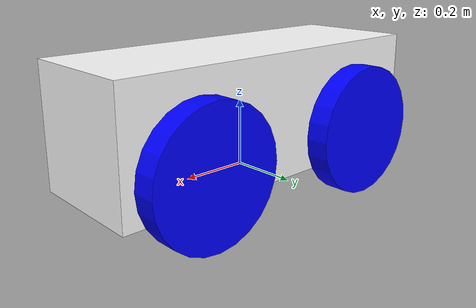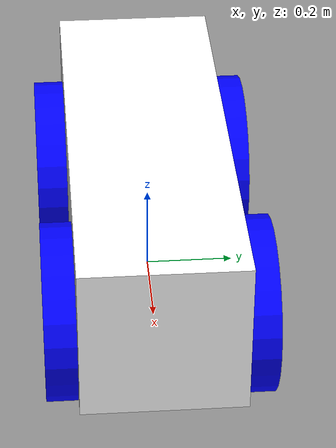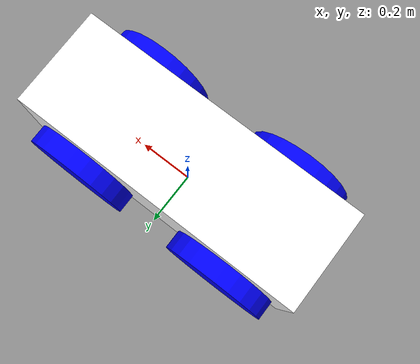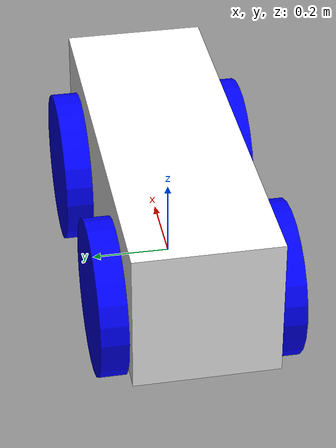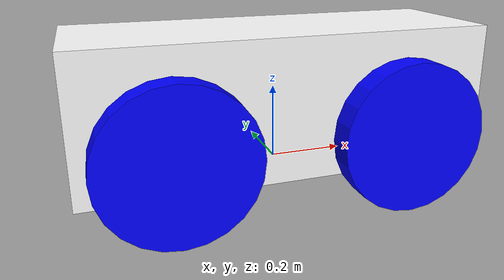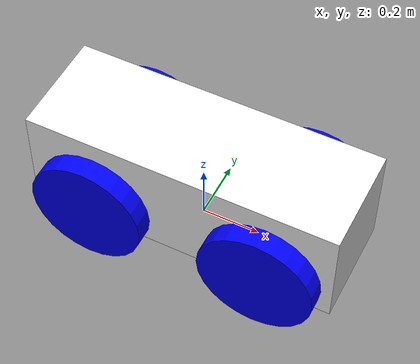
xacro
<?xml version="1.0"?>
<robot xmlns:xacro="http://www.ros.org/wiki/xacro">

    <xacro:include filename="robot_properties.xacro" />
    <xacro:include filename="inertial_macros.xacro"/>
    <xacro:include filename="component_macros.xacro" />

    <material name="white">
        <color rgba="1 1 1 1"/>
    </material>

    <material name="red">
        <color rgba="1 0 0 1"/>
    </material>

    <material name="blue">
        <color rgba="0 0 1 1"/>
    </material>

    <material name="black">
        <color rgba="0 0 0 1"/>
    </material>

    <!-- Center of the robot -->

    <link name="base_link">
    </link>

    <!-- CHASSIS -->

    <joint name="chassis_joint" type="fixed">
        <parent link="base_link"/>
        <child link="chassis"/>
        <origin xyz="-${chassis_length/2} 0.0 0.0"/>
    </joint>

    <xacro:chassis
        length="${chassis_length}"
        width="${chassis_width}"
        height="${chassis_height}"
        mass="${chassis_mass}"
    />

    <!-- WHEEL LINKS -->

    <xacro:wheel
        robot_pos="front_left"
        radius="${wheel_radius}"
        width="${wheel_width}"
        mass="${wheel_mass}"
    />

    <xacro:wheel
        robot_pos="back_left"
        radius="${wheel_radius}"
        width="${wheel_width}"
        mass="${wheel_mass}"
    />

    <xacro:wheel
        robot_pos="front_right"
        radius="${wheel_radius}"
        width="${wheel_width}"
        mass="${wheel_mass}"
    />

    <xacro:wheel
        robot_pos="back_right"
        radius="${wheel_radius}"
        width="${wheel_width}"
        mass="${wheel_mass}"
    />

    <!-- WHEEL JOINTS -->

    <joint name="front_left_wheel_joint" type="continuous">
        <parent link="base_link"/>
        <child link="front_left_wheel"/>
        <axis xyz="0.0 0.0 1"/>
        <origin
            xyz="${wheel_base/2} ${track_width/2} ${wheel_z_offset}"
            rpy="-${pi/2} 0.0 0.0"
        />
    </joint>

    <joint name="back_left_wheel_joint" type="continuous">
        <parent link="base_link"/>
        <child link="back_left_wheel"/>
        <axis xyz="0.0 0.0 1"/>
        <origin
            xyz="-${wheel_base/2} ${track_width/2} ${wheel_z_offset}"
            rpy="-${pi/2} 0.0 0.0"
        />
    </joint>

    <joint name="front_right_wheel_joint" type="continuous">
        <parent link="base_link"/>
        <child link="front_right_wheel"/>
        <axis xyz="0.0 0.0 -1"/>
        <origin
            xyz="${wheel_base/2} -${track_width/2} ${wheel_z_offset}"
            rpy="${pi/2} 0.0 0.0"
        />
    </joint>

    <joint name="back_right_wheel_joint" type="continuous">
        <parent link="base_link"/>
        <child link="back_right_wheel"/>
        <axis xyz="0.0 0.0 -1"/>
        <origin
            xyz="-${wheel_base/2} -${track_width/2} ${wheel_z_offset}"
            rpy="${pi/2} 0.0 0.0"
        />
    </joint>
</robot>

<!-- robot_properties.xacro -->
<robot xmlns:xacro="http://ros.org/wiki/xacro">

    <xacro:property name="chassis_length" value="1.065" />
    <xacro:property name="chassis_width" value="0.365" />
    <xacro:property name="chassis_height" value="0.365" />
    <xacro:property name="chassis_mass" value="20.0" />

    <xacro:property name="wheel_radius" value="0.1975" />
    <xacro:property name="wheel_width" value="0.070" />
    <xacro:property name="wheel_mass" value="2.44" />

    <xacro:property name="track_width" value="${chassis_width + wheel_width}" />
    <xacro:property name="wheel_base" value="0.597" />
    <xacro:property name="wheel_z_offset" value="0.098" />
</robot>

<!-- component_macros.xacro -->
<robot xmlns:xacro="http://www.ros.org/wiki/xacro" >

    <xacro:include filename="inertial_macros.xacro"/>

    <xacro:macro name="wheel" params="robot_pos radius width mass">
        <link name="${robot_pos}_wheel">
            <visual>
                <geometry>
                    <cylinder radius="${radius}" length="${width}"/>
                </geometry>
                <material name="blue"/>
            </visual>
            <collision>
                <geometry>
                    <cylinder radius="${radius}" length="${width}"/>
                </geometry>
            </collision>
            <xacro:inertial_cylinder mass="${mass}" length="${width}" radius="${radius}">
                <origin xyz="0.0 0.0 0.0" rpy="0 0 0"/>
            </xacro:inertial_cylinder>
        </link>
        <gazebo reference="${robot_pos}_wheel">
            <material>
                Gazebo/Blue
            </material>
        </gazebo>
    </xacro:macro>

    <xacro:macro name="chassis" params="length width height mass">
        <link name="chassis">
            <visual>
                <origin xyz="${length/2} 0 ${height/2}"/>
                <geometry>
                    <box size="${length} ${width} ${height}"/>
                </geometry>
                <material name="white"/>
            </visual>
            <collision>
                <origin xyz="${length/2} 0 ${height/2}"/>
                <geometry>
                    <box size="${length} ${width} ${height}"/>
                </geometry>
            </collision>
            <xacro:inertial_box mass="${mass}" x="${length}" y="${width}" z="${height}">
                <origin xyz="${length/2} 0 ${height/2}" rpy="0.0 0.0 0.0"/>
            </xacro:inertial_box>
        </link>
        <gazebo reference="chassis">
            <material>
                Gazebo/White
            </material>
        </gazebo>
    </xacro:macro>

</robot>
